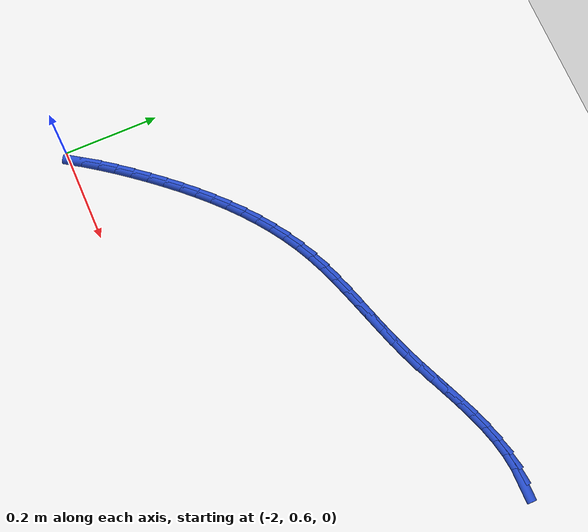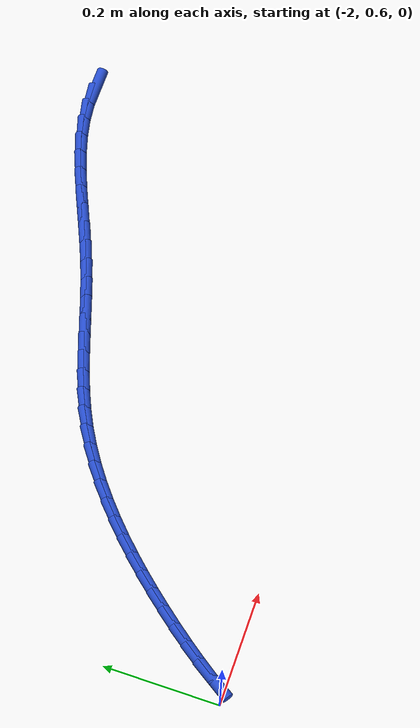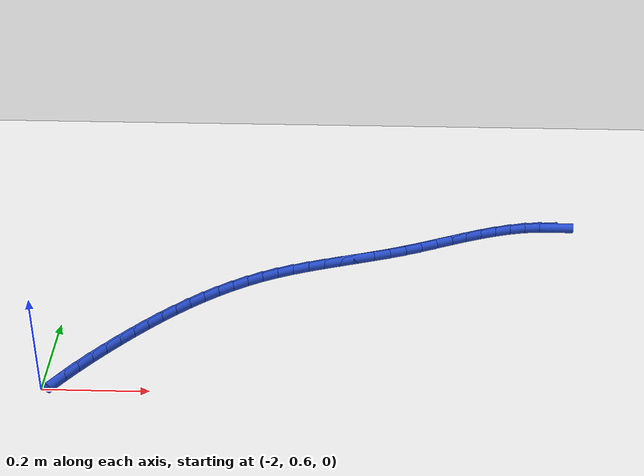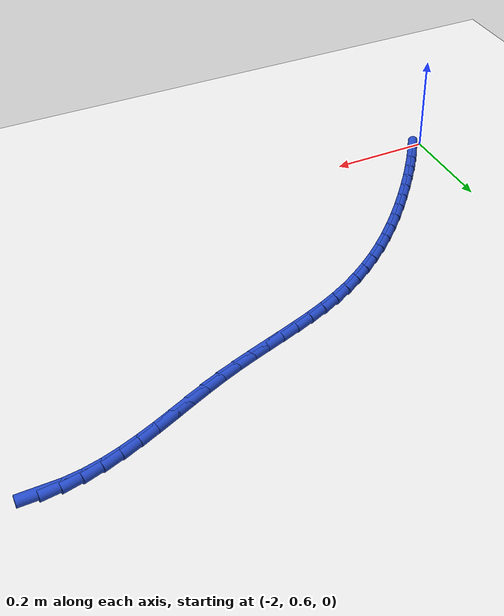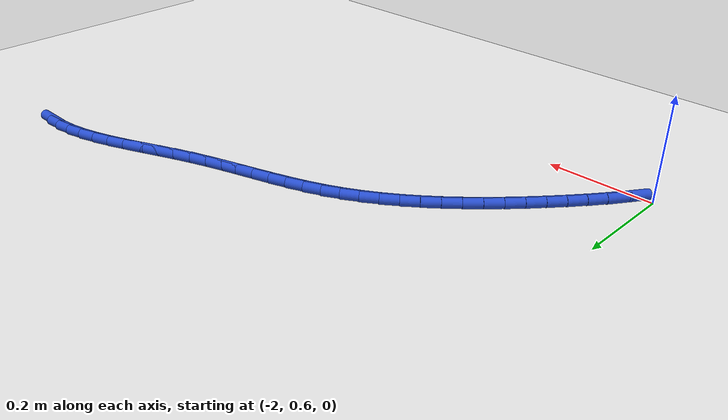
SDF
<sdf version="1.6">
 <world name="default">
  <model name="ground_plane">
   <static>1</static>
   <link name="link">
    <collision name="collision">
     <geometry><plane><normal>0 0 1</normal><size>100 100</size></plane></geometry>
     <surface><friction><ode><mu>100</mu><mu2>50</mu2></ode></friction></surface>
    </collision>
    <visual name="visual">
     <cast_shadows>0</cast_shadows>
     <geometry><plane><normal>0 0 1</normal><size>100 100</size></plane></geometry>
     <material>
      <script><uri>file://media/materials/scripts/gazebo.material</uri><name>Gazebo/WhiteGlow</name></script>
     </material>
    </visual>
   </link>
  </model>
  <model name="line">
   <link name="link_49">
    <pose>-1.0063433091980798 1.1696108747647087 0.01 0 1.57 -0.000877059354770341</pose>
    <collision name="collision">
     <geometry><cylinder><radius>0.01</radius><length>0.08</length></cylinder></geometry>
    </collision>
    <visual name="visual">
     <material>
      <script><name>Gazebo/Blue</name><uri>file://media/materials/scripts/gazebo.material</uri></script>
     </material>
     <geometry><cylinder><radius>0.01</radius><length>0.08</length></cylinder></geometry>
    </visual>
   </link>
   <link name="link_50">
    <pose>-1.0386855855951531 1.1696392408680507 0.01 0 1.57 0.1121058892237755</pose>
    <collision name="collision">
     <geometry><cylinder><radius>0.01</radius><length>0.08</length></cylinder></geometry>
    </collision>
    <visual name="visual">
     <material>
      <script><name>Gazebo/Blue</name><uri>file://media/materials/scripts/gazebo.material</uri></script>
     </material>
     <geometry><cylinder><radius>0.01</radius><length>0.08</length></cylinder></geometry>
    </visual>
   </link>
   <link name="link_51">
    <pose>-1.0710134390627517 1.1659998389783468 0.01 0 1.57 0.20775080116748892</pose>
    <collision name="collision">
     <geometry><cylinder><radius>0.01</radius><length>0.08</length></cylinder></geometry>
    </collision>
    <visual name="visual">
     <material>
      <script><name>Gazebo/Blue</name><uri>file://media/materials/scripts/gazebo.material</uri></script>
     </material>
     <geometry><cylinder><radius>0.01</radius><length>0.08</length></cylinder></geometry>
    </visual>
   </link>
   <link name="link_52">
    <pose>-1.1033472299933533 1.1591841284460362 0.01 0 1.57 0.28368129305164086</pose>
    <collision name="collision">
     <geometry><cylinder><radius>0.01</radius><length>0.08</length></cylinder></geometry>
    </collision>
    <visual name="visual">
     <material>
      <script><name>Gazebo/Blue</name><uri>file://media/materials/scripts/gazebo.material</uri></script>
     </material>
     <geometry><cylinder><radius>0.01</radius><length>0.08</length></cylinder></geometry>
    </visual>
   </link>
   <link name="link_53">
    <pose>-1.1357065328907086 1.1497499595151255 0.01 0 1.57 0.34088152159653085</pose>
    <collision name="collision">
     <geometry><cylinder><radius>0.01</radius><length>0.08</length></cylinder></geometry>
    </collision>
    <visual name="visual">
     <material>
      <script><name>Gazebo/Blue</name><uri>file://media/materials/scripts/gazebo.material</uri></script>
     </material>
     <geometry><cylinder><radius>0.01</radius><length>0.08</length></cylinder></geometry>
    </visual>
   </link>
   <link name="link_54">
    <pose>-1.1681109222585675 1.1382551824296203 0.01 0 1.57 0.38076959369098706</pose>
    <collision name="collision">
     <geometry><cylinder><radius>0.01</radius><length>0.08</length></cylinder></geometry>
    </collision>
    <visual name="visual">
     <material>
      <script><name>Gazebo/Blue</name><uri>file://media/materials/scripts/gazebo.material</uri></script>
     </material>
     <geometry><cylinder><radius>0.01</radius><length>0.08</length></cylinder></geometry>
    </visual>
   </link>
   <link name="link_55">
    <pose>-1.2005799726006814 1.1252576474335267 0.01 0 1.57 0.4046590879387723</pose>
    <collision name="collision">
     <geometry><cylinder><radius>0.01</radius><length>0.08</length></cylinder></geometry>
    </collision>
    <visual name="visual">
     <material>
      <script><name>Gazebo/Blue</name><uri>file://media/materials/scripts/gazebo.material</uri></script>
     </material>
     <geometry><cylinder><radius>0.01</radius><length>0.08</length></cylinder></geometry>
    </visual>
   </link>
   <link name="link_56">
    <pose>-1.2331332584208001 1.1113152047708512 0.01 0 1.57 0.413489935598325</pose>
    <collision name="collision">
     <geometry><cylinder><radius>0.01</radius><length>0.08</length></cylinder></geometry>
    </collision>
    <visual name="visual">
     <material>
      <script><name>Gazebo/Blue</name><uri>file://media/materials/scripts/gazebo.material</uri></script>
     </material>
     <geometry><cylinder><radius>0.01</radius><length>0.08</length></cylinder></geometry>
    </visual>
   </link>
   <link name="link_57">
    <pose>-1.2657903542226752 1.0969857046855993 0.01 0 1.57 0.4077214891291642</pose>
    <collision name="collision">
     <geometry><cylinder><radius>0.01</radius><length>0.08</length></cylinder></geometry>
    </collision>
    <visual name="visual">
     <material>
      <script><name>Gazebo/Blue</name><uri>file://media/materials/scripts/gazebo.material</uri></script>
     </material>
     <geometry><cylinder><radius>0.01</radius><length>0.08</length></cylinder></geometry>
    </visual>
   </link>
   <link name="link_58">
    <pose>-1.298570834510055 1.0828269974217772 0.01 0 1.57 0.3873135659385107</pose>
    <collision name="collision">
     <geometry><cylinder><radius>0.01</radius><length>0.08</length></cylinder></geometry>
    </collision>
    <visual name="visual">
     <material>
      <script><name>Gazebo/Blue</name><uri>file://media/materials/scripts/gazebo.material</uri></script>
     </material>
     <geometry><cylinder><radius>0.01</radius><length>0.08</length></cylinder></geometry>
    </visual>
   </link>
   <link name="link_59">
    <pose>-1.3314942737866926 1.0693969332233906 0.01 0 1.57 0.3554402427371123</pose>
    <collision name="collision">
     <geometry><cylinder><radius>0.01</radius><length>0.08</length></cylinder></geometry>
    </collision>
    <visual name="visual">
     <material>
      <script><name>Gazebo/Blue</name><uri>file://media/materials/scripts/gazebo.material</uri></script>
     </material>
     <geometry><cylinder><radius>0.01</radius><length>0.08</length></cylinder></geometry>
    </visual>
   </link>
   <link name="link_60">
    <pose>-1.3645603871295027 1.0571225950256826 0.01 0 1.57 0.32906731866348643</pose>
    <collision name="collision">
     <geometry><cylinder><radius>0.01</radius><length>0.08</length></cylinder></geometry>
    </collision>
    <visual name="visual">
     <material>
      <script><name>Gazebo/Blue</name><uri>file://media/materials/scripts/gazebo.material</uri></script>
     </material>
     <geometry><cylinder><radius>0.01</radius><length>0.08</length></cylinder></geometry>
    </visual>
   </link>
   <link name="link_61">
    <pose>-1.397675242381141 1.0458144318146985 0.01 0 1.57 0.3135323342162594</pose>
    <collision name="collision">
     <geometry><cylinder><radius>0.01</radius><length>0.08</length></cylinder></geometry>
    </collision>
    <visual name="visual">
     <material>
      <script><name>Gazebo/Blue</name><uri>file://media/materials/scripts/gazebo.material</uri></script>
     </material>
     <geometry><cylinder><radius>0.01</radius><length>0.08</length></cylinder></geometry>
    </visual>
   </link>
   <link name="link_62">
    <pose>-1.4307173298411997 1.0351013041994073 0.01 0 1.57 0.3090941473638984</pose>
    <collision name="collision">
     <geometry><cylinder><radius>0.01</radius><length>0.08</length></cylinder></geometry>
    </collision>
    <visual name="visual">
     <material>
      <script><name>Gazebo/Blue</name><uri>file://media/materials/scripts/gazebo.material</uri></script>
     </material>
     <geometry><cylinder><radius>0.01</radius><length>0.08</length></cylinder></geometry>
    </visual>
   </link>
   <link name="link_63">
    <pose>-1.4635651359482267 1.0246120473651505 0.01 0 1.57 0.3160004216353762</pose>
    <collision name="collision">
     <geometry><cylinder><radius>0.01</radius><length>0.08</length></cylinder></geometry>
    </collision>
    <visual name="visual">
     <material>
      <script><name>Gazebo/Blue</name><uri>file://media/materials/scripts/gazebo.material</uri></script>
     </material>
     <geometry><cylinder><radius>0.01</radius><length>0.08</length></cylinder></geometry>
    </visual>
   </link>
   <link name="link_64">
    <pose>-1.496097147140767 1.01397549649727 0.01 0 1.57 0.3345043088950019</pose>
    <collision name="collision">
     <geometry><cylinder><radius>0.01</radius><length>0.08</length></cylinder></geometry>
    </collision>
    <visual name="visual">
     <material>
      <script><name>Gazebo/Blue</name><uri>file://media/materials/scripts/gazebo.material</uri></script>
     </material>
     <geometry><cylinder><radius>0.01</radius><length>0.08</length></cylinder></geometry>
    </visual>
   </link>
   <link name="link_65">
    <pose>-1.5281918498573672 1.0028204867811066 0.01 0 1.57 0.36483612275729305</pose>
    <collision name="collision">
     <geometry><cylinder><radius>0.01</radius><length>0.08</length></cylinder></geometry>
    </collision>
    <visual name="visual">
     <material>
      <script><name>Gazebo/Blue</name><uri>file://media/materials/scripts/gazebo.material</uri></script>
     </material>
     <geometry><cylinder><radius>0.01</radius><length>0.08</length></cylinder></geometry>
    </visual>
   </link>
   <link name="link_66">
    <pose>-1.5597277305365755 0.990775853402003 0.01 0 1.57 0.407124320332939</pose>
    <collision name="collision">
     <geometry><cylinder><radius>0.01</radius><length>0.08</length></cylinder></geometry>
    </collision>
    <visual name="visual">
     <material>
      <script><name>Gazebo/Blue</name><uri>file://media/materials/scripts/gazebo.material</uri></script>
     </material>
     <geometry><cylinder><radius>0.01</radius><length>0.08</length></cylinder></geometry>
    </visual>
   </link>
   <link name="link_67">
    <pose>-1.590583275616937 0.9774704315453 0.01 0 1.57 0.4610456226994883</pose>
    <collision name="collision">
     <geometry><cylinder><radius>0.01</radius><length>0.08</length></cylinder></geometry>
    </collision>
    <visual name="visual">
     <material>
      <script><name>Gazebo/Blue</name><uri>file://media/materials/scripts/gazebo.material</uri></script>
     </material>
     <geometry><cylinder><radius>0.01</radius><length>0.08</length></cylinder></geometry>
    </visual>
   </link>
   <link name="link_68">
    <pose>-1.6206391342265514 0.9625401316111488 0.01 0 1.57 0.5194248198054484</pose>
    <collision name="collision">
     <geometry><cylinder><radius>0.01</radius><length>0.08</length></cylinder></geometry>
    </collision>
    <visual name="visual">
     <material>
      <script><name>Gazebo/Blue</name><uri>file://media/materials/scripts/gazebo.material</uri></script>
     </material>
     <geometry><cylinder><radius>0.01</radius><length>0.08</length></cylinder></geometry>
    </visual>
   </link>
   <link name="link_69">
    <pose>-1.6498433148948952 0.9458412295318409 0.01 0 1.57 0.5740553621605994</pose>
    <collision name="collision">
     <geometry><cylinder><radius>0.01</radius><length>0.08</length></cylinder></geometry>
    </collision>
    <visual name="visual">
     <material>
      <script><name>Gazebo/Blue</name><uri>file://media/materials/scripts/gazebo.material</uri></script>
     </material>
     <geometry><cylinder><radius>0.01</radius><length>0.08</length></cylinder></geometry>
    </visual>
   </link>
   <link name="link_70">
    <pose>-1.6782227265809027 0.9274881231167609 0.01 0 1.57 0.6244115627543538</pose>
    <collision name="collision">
     <geometry><cylinder><radius>0.01</radius><length>0.08</length></cylinder></geometry>
    </collision>
    <visual name="visual">
     <material>
      <script><name>Gazebo/Blue</name><uri>file://media/materials/scripts/gazebo.material</uri></script>
     </material>
     <geometry><cylinder><radius>0.01</radius><length>0.08</length></cylinder></geometry>
    </visual>
   </link>
   <link name="link_71">
    <pose>-1.7058087672499813 0.9076098959100257 0.01 0 1.57 0.6705216479186206</pose>
    <collision name="collision">
     <geometry><cylinder><radius>0.01</radius><length>0.08</length></cylinder></geometry>
    </collision>
    <visual name="visual">
     <material>
      <script><name>Gazebo/Blue</name><uri>file://media/materials/scripts/gazebo.material</uri></script>
     </material>
     <geometry><cylinder><radius>0.01</radius><length>0.08</length></cylinder></geometry>
    </visual>
   </link>
   <link name="link_72">
    <pose>-1.7326328348675395 0.8863356314557531 0.01 0 1.57 0.7124877349476858</pose>
    <collision name="collision">
     <geometry><cylinder><radius>0.01</radius><length>0.08</length></cylinder></geometry>
    </collision>
    <visual name="visual">
     <material>
      <script><name>Gazebo/Blue</name><uri>file://media/materials/scripts/gazebo.material</uri></script>
     </material>
     <geometry><cylinder><radius>0.01</radius><length>0.08</length></cylinder></geometry>
    </visual>
   </link>
   <link name="link_73">
    <pose>-1.7587263273989837 0.8637944132980596 0.01 0 1.57 0.7504601114305502</pose>
    <collision name="collision">
     <geometry><cylinder><radius>0.01</radius><length>0.08</length></cylinder></geometry>
    </collision>
    <visual name="visual">
     <material>
      <script><name>Gazebo/Blue</name><uri>file://media/materials/scripts/gazebo.material</uri></script>
     </material>
     <geometry><cylinder><radius>0.01</radius><length>0.08</length></cylinder></geometry>
    </visual>
   </link>
   <link name="link_74">
    <pose>-1.7841206428097218 0.8401153249810631 0.01 0 1.57 0.7846157739195524</pose>
    <collision name="collision">
     <geometry><cylinder><radius>0.01</radius><length>0.08</length></cylinder></geometry>
    </collision>
    <visual name="visual">
     <material>
      <script><name>Gazebo/Blue</name><uri>file://media/materials/scripts/gazebo.material</uri></script>
     </material>
     <geometry><cylinder><radius>0.01</radius><length>0.08</length></cylinder></geometry>
    </visual>
   </link>
   <link name="link_75">
    <pose>-1.8088471790651623 0.8154274500488808 0.01 0 1.57 0.8151415114135069</pose>
    <collision name="collision">
     <geometry><cylinder><radius>0.01</radius><length>0.08</length></cylinder></geometry>
    </collision>
    <visual name="visual">
     <material>
      <script><name>Gazebo/Blue</name><uri>file://media/materials/scripts/gazebo.material</uri></script>
     </material>
     <geometry><cylinder><radius>0.01</radius><length>0.08</length></cylinder></geometry>
    </visual>
   </link>
   <link name="link_76">
    <pose>-1.8329373341307118 0.78985987204563 0.01 0 1.57 0.8422211440293839</pose>
    <collision name="collision">
     <geometry><cylinder><radius>0.01</radius><length>0.08</length></cylinder></geometry>
    </collision>
    <visual name="visual">
     <material>
      <script><name>Gazebo/Blue</name><uri>file://media/materials/scripts/gazebo.material</uri></script>
     </material>
     <geometry><cylinder><radius>0.01</radius><length>0.08</length></cylinder></geometry>
    </visual>
   </link>
   <link name="link_77">
    <pose>-1.8564225059717783 0.7635416745154279 0.01 0 1.57 0.8660262050077477</pose>
    <collision name="collision">
     <geometry><cylinder><radius>0.01</radius><length>0.08</length></cylinder></geometry>
    </collision>
    <visual name="visual">
     <material>
      <script><name>Gazebo/Blue</name><uri>file://media/materials/scripts/gazebo.material</uri></script>
     </material>
     <geometry><cylinder><radius>0.01</radius><length>0.08</length></cylinder></geometry>
    </visual>
   </link>
   <link name="link_78">
    <pose>-1.87933409255377 0.7366019410023918 0.01 0 1.57 0.8870336354355749</pose>
    <collision name="collision">
     <geometry><cylinder><radius>0.01</radius><length>0.08</length></cylinder></geometry>
    </collision>
    <visual name="visual">
     <material>
      <script><name>Gazebo/Blue</name><uri>file://media/materials/scripts/gazebo.material</uri></script>
     </material>
     <geometry><cylinder><radius>0.01</radius><length>0.08</length></cylinder></geometry>
    </visual>
   </link>
   <link name="link_79">
    <pose>-1.9016950107096684 0.7091619872445427 0.01 0 1.57 0.9086774013984144</pose>
    <collision name="collision">
     <geometry><cylinder><radius>0.01</radius><length>0.08</length></cylinder></geometry>
    </collision>
    <visual name="visual">
     <material>
      <script><name>Gazebo/Blue</name><uri>file://media/materials/scripts/gazebo.material</uri></script>
     </material>
     <geometry><cylinder><radius>0.01</radius><length>0.08</length></cylinder></geometry>
    </visual>
   </link>
   <link name="link_80">
    <pose>-1.9234417061216778 0.6812639306961674 0.01 0 1.57 0.9330027588293349</pose>
    <collision name="collision">
     <geometry><cylinder><radius>0.01</radius><length>0.08</length></cylinder></geometry>
    </collision>
    <visual name="visual">
     <material>
      <script><name>Gazebo/Blue</name><uri>file://media/materials/scripts/gazebo.material</uri></script>
     </material>
     <geometry><cylinder><radius>0.01</radius><length>0.08</length></cylinder></geometry>
    </visual>
   </link>
   <link name="link_81">
    <pose>-1.9444601005155229 0.6529036142956659 0.01 0 1.57 0.9601574211399744</pose>
    <collision name="collision">
     <geometry><cylinder><radius>0.01</radius><length>0.08</length></cylinder></geometry>
    </collision>
    <visual name="visual">
     <material>
      <script><name>Gazebo/Blue</name><uri>file://media/materials/scripts/gazebo.material</uri></script>
     </material>
     <geometry><cylinder><radius>0.01</radius><length>0.08</length></cylinder></geometry>
    </visual>
   </link>
   <link name="link_82">
    <pose>-1.964635481319565 0.6240763000332006 0.01 0 1.57 0.9902749257063879</pose>
    <collision name="collision">
     <geometry><cylinder><radius>0.01</radius><length>0.08</length></cylinder></geometry>
    </collision>
    <visual name="visual">
     <material>
      <script><name>Gazebo/Blue</name><uri>file://media/materials/scripts/gazebo.material</uri></script>
     </material>
     <geometry><cylinder><radius>0.01</radius><length>0.08</length></cylinder></geometry>
    </visual>
   </link>
  </model>
 </world>
</sdf>
